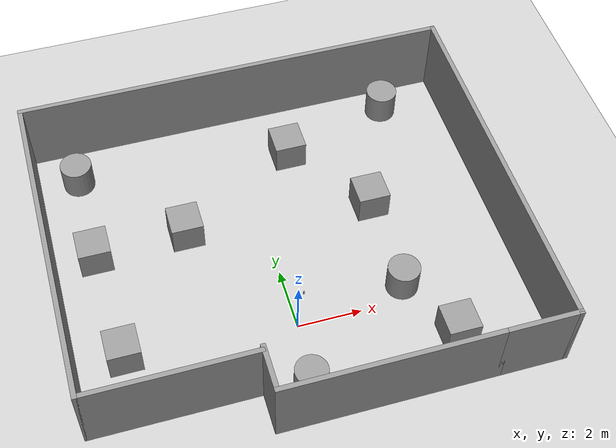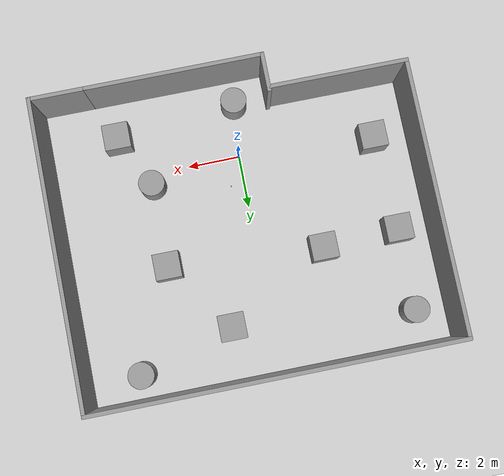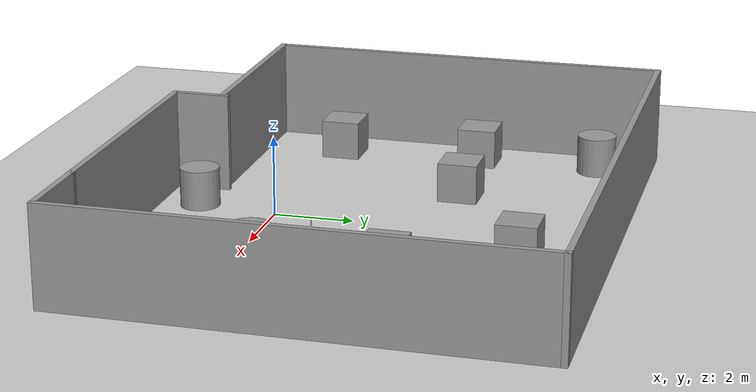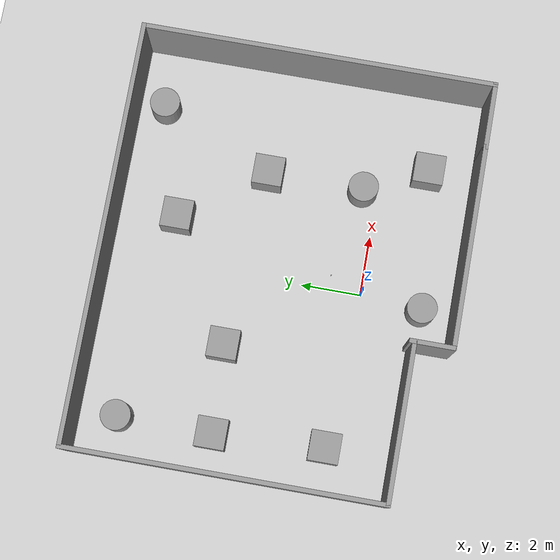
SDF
<sdf version="1.7">
 <world name="default">
  <light name="sun" type="directional">
   <pose>0 0 10 0 -0 0</pose>
   <diffuse>0.8 0.8 0.8 1</diffuse>
   <specular>0.2 0.2 0.2 1</specular>
   <attenuation>
    <range>1000</range>
    <constant>0.9</constant>
    <linear>0.01</linear>
    <quadratic>0.001</quadratic>
   </attenuation>
   <direction>-0.5 0.1 -0.9</direction>
   <spot><inner_angle>0</inner_angle><outer_angle>0</outer_angle><falloff>0</falloff></spot>
  </light>
  <model name="ground_plane">
   <static>1</static>
   <link name="link">
    <collision name="collision">
     <geometry><plane><normal>0 0 1</normal><size>100 100</size></plane></geometry>
     <surface>
      <contact><collide_bitmask>65535</collide_bitmask></contact>
      <friction><ode><mu>100</mu><mu2>50</mu2></ode></friction>
     </surface>
    </collision>
    <visual name="visual">
     <cast_shadows>0</cast_shadows>
     <geometry><plane><normal>0 0 1</normal><size>100 100</size></plane></geometry>
     <material>
      <script><uri>file://media/materials/scripts/gazebo.material</uri><name>Gazebo/Grey</name></script>
     </material>
    </visual>
   </link>
  </model>
  <gravity>0 0 -9.8</gravity>
  <magnetic_field>6e-06 2.3e-05 -4.2e-05</magnetic_field>
  <atmosphere type="adiabatic"/>
  <physics type="ode">
   <max_step_size>0.001</max_step_size>
   <real_time_factor>1</real_time_factor>
   <real_time_update_rate>1000</real_time_update_rate>
  </physics>
  <scene><ambient>0.4 0.4 0.4 1</ambient><background>0.7 0.7 0.7 1</background><shadows>1</shadows></scene>
  <spherical_coordinates>
   <surface_model>EARTH_WGS84</surface_model>
   <latitude_deg>0</latitude_deg>
   <longitude_deg>0</longitude_deg>
   <elevation>0</elevation>
   <heading_deg>0</heading_deg>
  </spherical_coordinates>
  <model name="Untitled">
   <pose>0.265 2.7 0 0 -0 0</pose>
   <link name="Wall_0">
    <collision name="Wall_0_Collision">
     <geometry><box><size>1.5 0.15 2.5</size></box></geometry>
     <pose>0 0 1.25 0 -0 0</pose>
    </collision>
    <visual name="Wall_0_Visual">
     <pose>0 0 1.25 0 -0 0</pose>
     <geometry><box><size>1.5 0.15 2.5</size></box></geometry>
     <material>
      <script><uri>file://media/materials/scripts/gazebo.material</uri><name>Gazebo/Grey</name></script>
      <ambient>1 1 1 1</ambient>
     </material>
     <meta><layer>0</layer></meta>
    </visual>
    <pose>-1.775 -5.125 0 0 -0 -1.5708</pose>
   </link>
   <link name="Wall_1">
    <collision name="Wall_1_Collision">
     <geometry><box><size>6.75 0.15 2.5</size></box></geometry>
     <pose>0 0 1.25 0 -0 0</pose>
    </collision>
    <visual name="Wall_1_Visual">
     <pose>0 0 1.25 0 -0 0</pose>
     <geometry><box><size>6.75 0.15 2.5</size></box></geometry>
     <material>
      <script><uri>file://media/materials/scripts/gazebo.material</uri><name>Gazebo/Grey</name></script>
      <ambient>1 1 1 1</ambient>
     </material>
     <meta><layer>0</layer></meta>
    </visual>
    <pose>1.525 -5.8 0 0 -0 0</pose>
   </link>
   <link name="Wall_3">
    <collision name="Wall_3_Collision">
     <geometry><box><size>2.25 0.15 2.5</size></box></geometry>
     <pose>0 0 1.25 0 -0 0</pose>
    </collision>
    <visual name="Wall_3_Visual">
     <pose>0 0 1.25 0 -0 0</pose>
     <geometry><box><size>2.25 0.15 2.5</size></box></geometry>
     <material>
      <script><uri>file://media/materials/scripts/gazebo.material</uri><name>Gazebo/Grey</name></script>
      <ambient>1 1 1 1</ambient>
     </material>
     <meta><layer>0</layer></meta>
    </visual>
    <pose>5.875 -5.8 0 0 -0 0</pose>
   </link>
   <link name="Wall_4">
    <collision name="Wall_4_Collision">
     <geometry><box><size>11.75 0.15 2.5</size></box></geometry>
     <pose>0 0 1.25 0 -0 0</pose>
    </collision>
    <visual name="Wall_4_Visual">
     <pose>0 0 1.25 0 -0 0</pose>
     <geometry><box><size>11.75 0.15 2.5</size></box></geometry>
     <material>
      <script><uri>file://media/materials/scripts/gazebo.material</uri><name>Gazebo/Grey</name></script>
      <ambient>1 1 1 1</ambient>
     </material>
     <meta><layer>0</layer></meta>
    </visual>
    <pose>6.925 -0 0 0 -0 1.5708</pose>
   </link>
   <link name="Wall_5">
    <collision name="Wall_5_Collision">
     <geometry><box><size>14 0.15 2.5</size></box></geometry>
     <pose>0 0 1.25 0 -0 0</pose>
    </collision>
    <visual name="Wall_5_Visual">
     <pose>0 0 1.25 0 -0 0</pose>
     <geometry><box><size>14 0.15 2.5</size></box></geometry>
     <material>
      <script><uri>file://media/materials/scripts/gazebo.material</uri><name>Gazebo/Grey</name></script>
      <ambient>1 1 1 1</ambient>
     </material>
     <meta><layer>0</layer></meta>
    </visual>
    <pose>-0 5.8 0 0 -0 3.14159</pose>
   </link>
   <link name="Wall_6">
    <collision name="Wall_6_Collision">
     <geometry><box><size>10.5 0.15 2.5</size></box></geometry>
     <pose>0 0 1.25 0 -0 0</pose>
    </collision>
    <visual name="Wall_6_Visual">
     <pose>0 0 1.25 0 -0 0</pose>
     <geometry><box><size>10.5 0.15 2.5</size></box></geometry>
     <material>
      <script><uri>file://media/materials/scripts/gazebo.material</uri><name>Gazebo/Grey</name></script>
      <ambient>1 1 1 1</ambient>
     </material>
     <meta><layer>0</layer></meta>
    </visual>
    <pose>-6.925 0.625 0 0 -0 -1.5708</pose>
   </link>
   <link name="Wall_7">
    <collision name="Wall_7_Collision">
     <geometry><box><size>5.25 0.15 2.5</size></box></geometry>
     <pose>0 0 1.25 0 -0 0</pose>
    </collision>
    <visual name="Wall_7_Visual">
     <pose>0 0 1.25 0 -0 0</pose>
     <geometry><box><size>5.25 0.15 2.5</size></box></geometry>
     <material>
      <script><uri>file://media/materials/scripts/gazebo.material</uri><name>Gazebo/Grey</name></script>
      <ambient>1 1 1 1</ambient>
     </material>
     <meta><layer>0</layer></meta>
    </visual>
    <pose>-4.375 -4.55 0 0 -0 0</pose>
   </link>
   <static>1</static>
  </model>
  <model name="unit_box">
   <pose>4.45507 -1.52585 0.499995 -1e-05 -0 -0</pose>
   <link name="link">
    <inertial>
     <mass>1</mass>
     <inertia>
      <ixx>0.166667</ixx>
      <ixy>0</ixy>
      <ixz>0</ixz>
      <iyy>0.166667</iyy>
      <iyz>0</iyz>
      <izz>0.166667</izz>
     </inertia>
    </inertial>
    <collision name="collision"><geometry><box><size>1 1 1</size></box></geometry></collision>
    <visual name="visual">
     <geometry><box><size>1 1 1</size></box></geometry>
     <material>
      <script><name>Gazebo/Grey</name><uri>file://media/materials/scripts/gazebo.material</uri></script>
     </material>
    </visual>
   </link>
  </model>
  <model name="unit_cylinder">
   <pose>-0.202065 -2.02462 0.499998 3e-06 -2e-06 0</pose>
   <link name="link">
    <inertial>
     <mass>1</mass>
     <inertia><ixx>0.145833</ixx><ixy>0</ixy><ixz>0</ixz><iyy>0.145833</iyy><iyz>0</iyz><izz>0.125</izz></inertia>
    </inertial>
    <collision name="collision">
     <geometry><cylinder><radius>0.5</radius><length>1</length></cylinder></geometry>
    </collision>
    <visual name="visual">
     <geometry><cylinder><radius>0.5</radius><length>1</length></cylinder></geometry>
     <material>
      <script><name>Gazebo/Grey</name><uri>file://media/materials/scripts/gazebo.material</uri></script>
     </material>
    </visual>
   </link>
  </model>
  <model name="unit_cylinder_0">
   <pose>5.16002 7.53328 0.499993 -3e-06 2e-06 0</pose>
   <link name="link">
    <inertial>
     <mass>1</mass>
     <inertia><ixx>0.145833</ixx><ixy>0</ixy><ixz>0</ixz><iyy>0.145833</iyy><iyz>0</iyz><izz>0.125</izz></inertia>
    </inertial>
    <collision name="collision">
     <geometry><cylinder><radius>0.5</radius><length>1</length></cylinder></geometry>
    </collision>
    <visual name="visual">
     <geometry><cylinder><radius>0.5</radius><length>1</length></cylinder></geometry>
     <material>
      <script><name>Gazebo/Grey</name><uri>file://media/materials/scripts/gazebo.material</uri></script>
     </material>
    </visual>
   </link>
  </model>
  <model name="unit_box_0">
   <pose>3.47245 3.71914 0.499995 0 1e-05 0</pose>
   <link name="link">
    <inertial>
     <mass>1</mass>
     <inertia>
      <ixx>0.166667</ixx>
      <ixy>0</ixy>
      <ixz>0</ixz>
      <iyy>0.166667</iyy>
      <iyz>0</iyz>
      <izz>0.166667</izz>
     </inertia>
    </inertial>
    <collision name="collision"><geometry><box><size>1 1 1</size></box></geometry></collision>
    <visual name="visual">
     <geometry><box><size>1 1 1</size></box></geometry>
     <material>
      <script><name>Gazebo/Grey</name><uri>file://media/materials/scripts/gazebo.material</uri></script>
     </material>
    </visual>
   </link>
  </model>
  <model name="unit_box_1">
   <pose>-5.17861 0.337821 0.499995 -1e-05 -0 -0</pose>
   <link name="link">
    <inertial>
     <mass>1</mass>
     <inertia>
      <ixx>0.166667</ixx>
      <ixy>0</ixy>
      <ixz>0</ixz>
      <iyy>0.166667</iyy>
      <iyz>0</iyz>
      <izz>0.166667</izz>
     </inertia>
    </inertial>
    <collision name="collision"><geometry><box><size>1 1 1</size></box></geometry></collision>
    <visual name="visual">
     <geometry><box><size>1 1 1</size></box></geometry>
     <material>
      <script><name>Gazebo/Grey</name><uri>file://media/materials/scripts/gazebo.material</uri></script>
     </material>
    </visual>
   </link>
  </model>
  <model name="unit_box_2">
   <pose>-5.36984 4.01136 0.499995 0 1e-05 0</pose>
   <link name="link">
    <inertial>
     <mass>1</mass>
     <inertia>
      <ixx>0.166667</ixx>
      <ixy>0</ixy>
      <ixz>0</ixz>
      <iyy>0.166667</iyy>
      <iyz>0</iyz>
      <izz>0.166667</izz>
     </inertia>
    </inertial>
    <collision name="collision"><geometry><box><size>1 1 1</size></box></geometry></collision>
    <visual name="visual">
     <geometry><box><size>1 1 1</size></box></geometry>
     <material>
      <script><name>Gazebo/Grey</name><uri>file://media/materials/scripts/gazebo.material</uri></script>
     </material>
    </visual>
   </link>
  </model>
  <model name="unit_cylinder_1">
   <pose>-5.34239 7.14688 0.499992 -3e-06 3e-06 0</pose>
   <link name="link">
    <inertial>
     <mass>1</mass>
     <inertia><ixx>0.145833</ixx><ixy>0</ixy><ixz>0</ixz><iyy>0.145833</iyy><iyz>0</iyz><izz>0.125</izz></inertia>
    </inertial>
    <collision name="collision">
     <geometry><cylinder><radius>0.5</radius><length>1</length></cylinder></geometry>
    </collision>
    <visual name="visual">
     <geometry><cylinder><radius>0.5</radius><length>1</length></cylinder></geometry>
     <material>
      <script><name>Gazebo/Grey</name><uri>file://media/materials/scripts/gazebo.material</uri></script>
     </material>
    </visual>
   </link>
  </model>
  <model name="unit_box_3">
   <pose>-2.45389 4.155 0.499995 0 1e-05 0</pose>
   <link name="link">
    <inertial>
     <mass>1</mass>
     <inertia>
      <ixx>0.166667</ixx>
      <ixy>0</ixy>
      <ixz>0</ixz>
      <iyy>0.166667</iyy>
      <iyz>0</iyz>
      <izz>0.166667</izz>
     </inertia>
    </inertial>
    <collision name="collision"><geometry><box><size>1 1 1</size></box></geometry></collision>
    <visual name="visual">
     <geometry><box><size>1 1 1</size></box></geometry>
     <material>
      <script><name>Gazebo/Grey</name><uri>file://media/materials/scripts/gazebo.material</uri></script>
     </material>
    </visual>
   </link>
  </model>
  <model name="unit_box_4">
   <pose>1.51478 6.43734 0.499995 -1e-05 -0 -0</pose>
   <link name="link">
    <inertial>
     <mass>1</mass>
     <inertia>
      <ixx>0.166667</ixx>
      <ixy>0</ixy>
      <ixz>0</ixz>
      <iyy>0.166667</iyy>
      <iyz>0</iyz>
      <izz>0.166667</izz>
     </inertia>
    </inertial>
    <collision name="collision"><geometry><box><size>1 1 1</size></box></geometry></collision>
    <visual name="visual">
     <geometry><box><size>1 1 1</size></box></geometry>
     <material>
      <script><name>Gazebo/Grey</name><uri>file://media/materials/scripts/gazebo.material</uri></script>
     </material>
    </visual>
   </link>
  </model>
  <model name="unit_cylinder_2">
   <pose>3.46643 0.522825 0.499998 3e-06 -3e-06 0</pose>
   <link name="link">
    <inertial>
     <mass>1</mass>
     <inertia><ixx>0.145833</ixx><ixy>0</ixy><ixz>0</ixz><iyy>0.145833</iyy><iyz>0</iyz><izz>0.125</izz></inertia>
    </inertial>
    <collision name="collision">
     <geometry><cylinder><radius>0.5</radius><length>1</length></cylinder></geometry>
    </collision>
    <visual name="visual">
     <geometry><cylinder><radius>0.5</radius><length>1</length></cylinder></geometry>
     <material>
      <script><name>Gazebo/Grey</name><uri>file://media/materials/scripts/gazebo.material</uri></script>
     </material>
    </visual>
   </link>
  </model>
  <model name="unit_box_5">
   <pose>0.507888 1.07968 0.04039 7e-05 3e-06 0.000175</pose>
   <link name="link">
    <inertial>
     <mass>0.01</mass>
     <inertia>
      <ixx>0.166667</ixx>
      <ixy>0</ixy>
      <ixz>0</ixz>
      <iyy>0.166667</iyy>
      <iyz>0</iyz>
      <izz>0.166667</izz>
     </inertia>
    </inertial>
    <collision name="collision"><geometry><box><size>0.0299996 0.0300003 0.15</size></box></geometry></collision>
    <visual name="visual">
     <geometry><box><size>0.0299996 0.0300003 0.15</size></box></geometry>
     <material>
      <ambient>1 1 1 1</ambient>
      <diffuse>1 1 1 1</diffuse>
      <specular>0 0 0 0</specular>
      <emissive>1 1 1 1</emissive>
      <script><name>Gazebo/White</name><uri>file://media/materials/scripts/gazebo.material</uri></script>
     </material>
    </visual>
   </link>
  </model>
 </world>
</sdf>
